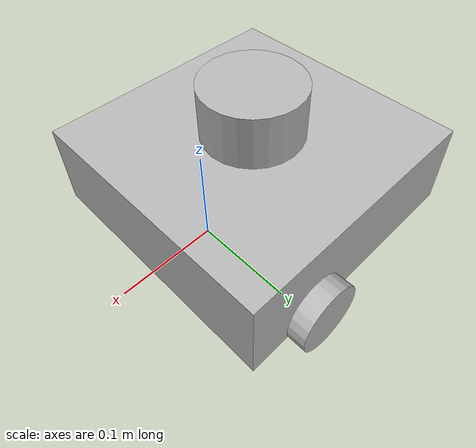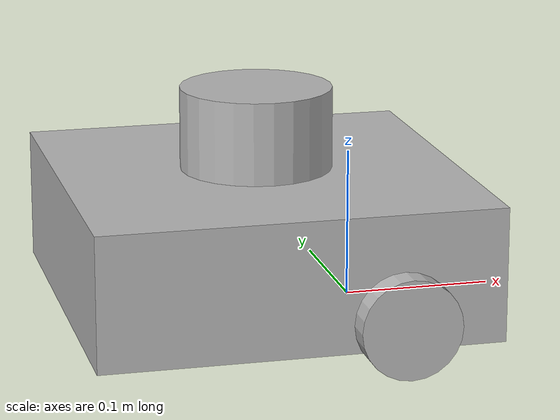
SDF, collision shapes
<?xml version="1.0"?>
<sdf version="1.6">
  <model name="turtlebot3_waffle">

    <link name="base_footprint"/>

    <link name="base_link">

      <inertial>
        <pose>-0.064 0 0.048 0 0 0</pose>
        <inertia>
          <ixx>4.2111447e-02</ixx>
          <ixy>0</ixy>
          <ixz>0</ixz>
          <iyy>4.2111447e-02</iyy>
          <iyz>0</iyz>
          <izz>7.5254874e-02</izz>
        </inertia>
        <mass>1.3729096e+00</mass>
      </inertial>

      <collision name="base_collision">
        <pose>-0.064 0 0.048 0 0 0</pose>
        <geometry>
          <box>
            <size>0.265 0.265 0.089</size>
          </box>
        </geometry>
      </collision>

      <visual name="base_visual">
        <pose>-0.064 0 0 0 0 0</pose>
        <geometry>
          <mesh>
            <uri>meshes/waffle_base.dae</uri>
            <scale>0.001 0.001 0.001</scale>
          </mesh>
        </geometry>
      </visual>
    </link>

    <link name="imu_link">
      <sensor name="imu_sensor" type="imu">
        <always_on>1</always_on>
        <update_rate>250</update_rate>
      </sensor>
    </link>

    <link name="base_scan">
      <pose>-0.064 0 0.121 0 0 0</pose>
      <inertial>
        <inertia>
          <ixx>0.001</ixx>
          <ixy>0.000</ixy>
          <ixz>0.000</ixz>
          <iyy>0.001</iyy>
          <iyz>0.000</iyz>
          <izz>0.001</izz>
        </inertia>
        <mass>0.114</mass>
      </inertial>

      <collision name="lidar_sensor_collision">
        <geometry>
          <cylinder>
            <radius>0.0508</radius>
            <length>0.055</length>
          </cylinder>
        </geometry>
      </collision>

      <visual name="lidar_sensor_visual">
        <geometry>
          <mesh>
            <uri>meshes/lds.dae</uri>
            <scale>0.001 0.001 0.001</scale>
          </mesh>
        </geometry>
      </visual>

      <sensor name="hls_lfcd_lds" type="gpu_lidar">
        <pose>-0.064 0 0.121 0 0 0</pose>

        <lidar>
          <scan>
            <horizontal>
              <samples>400</samples>
              <resolution>1</resolution>
              <min_angle>-1.5707</min_angle>
              <max_angle>1.5707</max_angle>
            </horizontal>
          </scan>
          <range>
            <min>0.15</min>
            <max>25</max>
            <resolution>0.01</resolution>
          </range>
        </lidar>
        <gz_frame_id>base_scan</gz_frame_id>
        <topic>scan</topic>
        <alwaysOn>1</alwaysOn>
        <visualize>true</visualize>
        <update_rate>10</update_rate>
      </sensor>
    </link>

    <link name="wheel_left_link">
      <inertial>
        <pose>0.0 0.144 0.023 -1.57 0 0</pose>
        <inertia>
          <ixx>1.1175580e-05</ixx>
          <ixy>-4.2369783e-11</ixy>
          <ixz>-5.9381719e-09</ixz>
          <iyy>1.1192413e-05</iyy>
          <iyz>-1.4400107e-11</iyz>
          <izz>2.0712558e-05</izz>
        </inertia>
        <mass>0.1</mass>
      </inertial>

      <collision name="wheel_left_collision">
        <pose>0.0 0.144 0.023 -1.57 0 0</pose>
        <geometry>
          <cylinder>
            <radius>0.033</radius>
            <length>0.018</length>
          </cylinder>
        </geometry>
        <surface>
          <!-- This friction pamareter don't contain reliable data!! -->
          <friction>
            <ode>
              <mu>100000.0</mu>
              <mu2>100000.0</mu2>
              <fdir1>0 0 0</fdir1>
              <slip1>0.0</slip1>
              <slip2>0.0</slip2>
            </ode>
          </friction>
          <contact>
            <ode>
              <soft_cfm>0</soft_cfm>
              <soft_erp>0.2</soft_erp>
              <kp>1e+5</kp>
              <kd>1</kd>
              <max_vel>0.01</max_vel>
              <min_depth>0.001</min_depth>
            </ode>
          </contact>
        </surface>
      </collision>

      <visual name="wheel_left_visual">
        <pose>0.0 0.144 0.023 0 0 0</pose>
        <geometry>
          <mesh>
            <uri>meshes/tire.dae</uri>
            <scale>0.001 0.001 0.001</scale>
          </mesh>
        </geometry>
      </visual>
    </link>

    <link name="wheel_right_link">

      <inertial>
        <pose>0.0 -0.144 0.023 -1.57 0 0</pose>
        <inertia>
          <ixx>1.1175580e-05</ixx>
          <ixy>-4.2369783e-11</ixy>
          <ixz>-5.9381719e-09</ixz>
          <iyy>1.1192413e-05</iyy>
          <iyz>-1.4400107e-11</iyz>
          <izz>2.0712558e-05</izz>
        </inertia>
        <mass>0.1</mass>
      </inertial>

      <collision name="wheel_right_collision">
        <pose>0.0 -0.144 0.023 -1.57 0 0</pose>
        <geometry>
          <cylinder>
            <radius>0.033</radius>
            <length>0.018</length>
          </cylinder>
        </geometry>
        <surface>
          <!-- This friction pamareter don't contain reliable data!! -->
          <friction>
            <ode>
              <mu>100000.0</mu>
              <mu2>100000.0</mu2>
              <fdir1>0 0 0</fdir1>
              <slip1>0.0</slip1>
              <slip2>0.0</slip2>
            </ode>
          </friction>
          <contact>
            <ode>
              <soft_cfm>0</soft_cfm>
              <soft_erp>0.2</soft_erp>
              <kp>1e+5</kp>
              <kd>1</kd>
              <max_vel>0.01</max_vel>
              <min_depth>0.001</min_depth>
            </ode>
          </contact>
        </surface>
      </collision>

      <visual name="wheel_right_visual">
        <pose>0.0 -0.144 0.023 0 0 0</pose>
        <geometry>
          <mesh>
            <uri>meshes/tire.dae</uri>
            <scale>0.001 0.001 0.001</scale>
          </mesh>
        </geometry>
      </visual>
    </link>

    <link name='caster_back_right_link'>
      <inertial>
        <pose>-0.177 -0.064 -0.004 -1.57 0 0</pose>
        <mass>0.001</mass>
        <inertia>
          <ixx>0.00001</ixx>
          <ixy>0.000</ixy>
          <ixz>0.000</ixz>
          <iyy>0.00001</iyy>
          <iyz>0.000</iyz>
          <izz>0.00001</izz>
        </inertia>
      </inertial>
      <collision name='collision'>
        <pose>-0.177 -0.064 -0.004 -1.57 0 0</pose>
        <geometry>
          <sphere>
            <radius>0.005000</radius>
          </sphere>
        </geometry>
        <surface>
          <contact>
            <ode>
              <soft_cfm>0</soft_cfm>
              <soft_erp>0.2</soft_erp>
              <kp>1e+5</kp>
              <kd>1</kd>
              <max_vel>0.01</max_vel>
              <min_depth>0.001</min_depth>
            </ode>
          </contact>
        </surface>
      </collision>
    </link>

    <link name='caster_back_left_link'>
      <inertial>
        <pose>-0.177 0.064 -0.004 -1.57 0 0</pose>
        <mass>0.001</mass>
        <inertia>
          <ixx>0.00001</ixx>
          <ixy>0.000</ixy>
          <ixz>0.000</ixz>
          <iyy>0.00001</iyy>
          <iyz>0.000</iyz>
          <izz>0.00001</izz>
        </inertia>
      </inertial>
      <collision name='collision'>
        <pose>-0.177 0.064 -0.004 -1.57 0 0</pose>
        <geometry>
          <sphere>
            <radius>0.005000</radius>
          </sphere>
        </geometry>
        <surface>
          <contact>
            <ode>
              <soft_cfm>0</soft_cfm>
              <soft_erp>0.2</soft_erp>
              <kp>1e+5</kp>
              <kd>1</kd>
              <max_vel>0.01</max_vel>
              <min_depth>0.001</min_depth>
            </ode>
          </contact>
        </surface>
      </collision>
    </link>

    <link name="camera_link"/>

    <link name="camera_rgb_frame">
      <inertial>
        <pose>0.069 -0.047 0.107 0 0 0</pose>
        <inertia>
          <ixx>0.001</ixx>
          <ixy>0.000</ixy>
          <ixz>0.000</ixz>
          <iyy>0.001</iyy>
          <iyz>0.000</iyz>
          <izz>0.001</izz>
        </inertia>
        <mass>0.035</mass>
      </inertial>

      <sensor name="camera" type="camera">
        <!-- Align sensor pose with the link without additional rotation -->
        <pose>0.069 -0.047 0.107 0 0 0</pose>
        <camera name="intel_realsense_r200">
          <camera_info_topic>/camera/camera_info</camera_info_topic>
          <horizontal_fov>1.02974</horizontal_fov>
          <image>
            <width>1920</width>
            <height>1080</height>
            <format>R8G8B8</format>
          </image>
          <clip>
            <near>0.02</near>
            <far>300</far>
          </clip>
          <noise>
            <type>gaussian</type>
            <mean>0.0</mean>
            <stddev>0.007</stddev>
          </noise>
        </camera>
        <gz_frame_id>camera_rgb_frame</gz_frame_id>
        <topic>/camera/image_raw</topic>
        <always_on>1</always_on>
        <update_rate>10</update_rate>
        <visualize>1</visualize>
      </sensor>
    </link>

    <joint name="base_joint" type="fixed">
      <parent>base_footprint</parent>
      <child>base_link</child>
      <pose>0.0 0.0 0.010 0 0 0</pose>
    </joint>

    <joint name="wheel_left_joint" type="revolute">
      <parent>base_link</parent>
      <child>wheel_left_link</child>
      <pose>0.0 0.144 0.023 -1.57 0 0</pose>
      <axis>
        <xyz>0 0 1</xyz>
        <limit>
          <effort>20</effort>
        </limit>
      </axis>
    </joint>

    <joint name="wheel_right_joint" type="revolute">
      <parent>base_link</parent>
      <child>wheel_right_link</child>
      <pose>0.0 -0.144 0.023 -1.57 0 0</pose>
      <axis>
        <xyz>0 0 1</xyz>
        <limit>
          <effort>20</effort>
        </limit>
      </axis>
    </joint>

    <joint name='caster_back_right_joint' type='continuous'>
      <parent>base_link</parent>
      <child>caster_back_right_link</child>
      <axis>
        <xyz>1 1 1</xyz>
      </axis>
    </joint>

    <joint name='caster_back_left_joint' type='continuous'>
      <parent>base_link</parent>
      <child>caster_back_left_link</child>
      <axis>
        <xyz>1 1 1</xyz>
      </axis>
    </joint>

    <joint name="imu_joint" type="fixed">
      <parent>base_link</parent>
      <child>imu_link</child>
      <pose>-0.032 0 0.068 0 0 0</pose>
      <axis>
        <xyz>0 0 1</xyz>
      </axis>
    </joint>

    <joint name="lidar_joint" type="fixed">
      <parent>base_link</parent>
      <child>base_scan</child>
      <pose>-0.064 0 0.121 0 0 0</pose>
      <axis>
        <xyz>0 0 1</xyz>
      </axis>
    </joint>

    <joint name="camera_joint" type="fixed">
      <parent>base_link</parent>
      <child>camera_link</child>
      <pose>0.064 -0.065 0.094 0 0 0</pose>
      <axis>
        <xyz>0 0 1</xyz>
      </axis>
    </joint>

    <joint name="camera_rgb_joint" type="fixed">
      <parent>camera_link</parent>
      <child>camera_rgb_frame</child>
      <pose>0.005 0.018 0.013 0 0 0</pose>
      <axis>
        <xyz>0 0 1</xyz>
      </axis>
    </joint>

    <plugin filename="gz-sim-diff-drive-system" name="gz::sim::systems::DiffDrive">

      <!-- wheels -->
      <left_joint>wheel_left_joint</left_joint>
      <right_joint>wheel_right_joint</right_joint>

      <!-- kinematics -->
      <wheel_separation>0.287</wheel_separation>
      <wheel_radius>0.033</wheel_radius>

      <!-- limits -->
      <max_linear_acceleration>0.033</max_linear_acceleration>

      <topic>cmd_vel</topic>

      <odom_topic>odom</odom_topic>
      <frame_id>odom</frame_id>
      <child_frame_id>base_footprint</child_frame_id>
      <odom_publisher_frequency>30</odom_publisher_frequency>

      <tf_topic>/tf</tf_topic> <!-- Short topic name for tf output -->

    </plugin>

    <plugin filename="gz-sim-joint-state-publisher-system"
      name="gz::sim::systems::JointStatePublisher">
      <topic>joint_states</topic>
      <joint_name>wheel_left_joint</joint_name>
      <joint_name>wheel_right_joint</joint_name>
    </plugin>

  </model>
</sdf>
